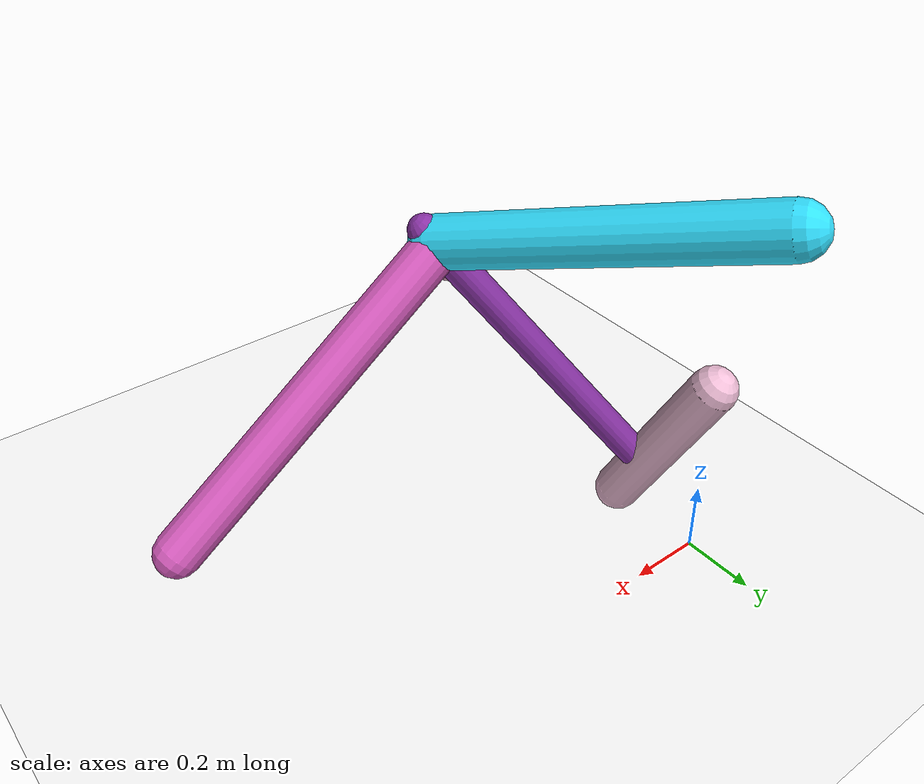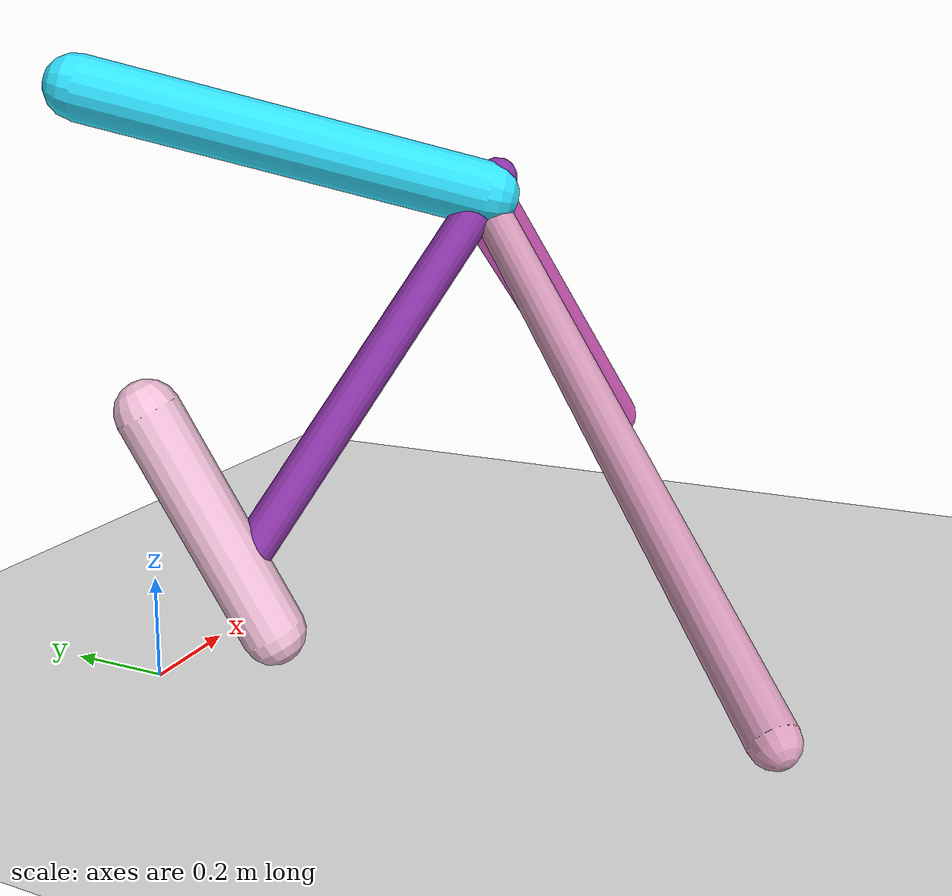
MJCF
<mujoco model="morphology">
  <option timestep="0.01"/>
  <default>
    <default class="/"/>
    <default class="0/"/>
    <default class="0/1/"/>
    <default class="0/1/2/"/>
    <default class="0/1/2/3/"/>
    <default class="0/1/2/3/4/"/>
  </default>
  <asset>
    <texture name="texplane" type="2d" builtin="checker" rgb1="0.10000000000000001 0.20000000000000001 0.29999999999999999" rgb2="0.20000000000000001 0.29999999999999999 0.40000000000000002" width="300" height="300"/>
    <material name="MatPlane" class="/" texture="texplane" texrepeat="20 20" specular="1" shininess="1" reflectance="0.5"/>
  </asset>
  <worldbody>
    <light name="//unnamed_light_0" class="/" directional="true" pos="0 0 1.5" dir="0 0 -1.3" cutoff="100" exponent="1" diffuse="1 1 1" specular="0.10000000000000001 0.10000000000000001 0.10000000000000001"/>
    <geom name="ground" class="/" type="plane" size="15 15 0.5" material="MatPlane" rgba="1 1 1 1"/>
    <site name="body" class="/" size="9.9999999999999995e-07 9.9999999999999995e-07 9.9999999999999995e-07" pos="0 0 0.53333807587623594"/>
    <body pos="0 0 0.53333807587623594" name="0/">
      <freejoint name="0/"/>
      <geom name="0/geom" class="0/" type="capsule" contype="1" conaffinity="1" condim="3" size="0.06340897440408623" rgba="0.93846790890076759 0.7429702923360596 0.84305062747102677 1" friction="0.59999999999999998 0.10000000000000001 0.10000000000000001" fromto="0 0 0 0.078108543246076856 -0.21683349515738159 -0.43333808380673461"/>
      <site name="0/end0" class="0/" size="0.0050000000000000001" pos="0.078108543246076856 -0.21683349515738159 -0.43333808380673461"/>
      <site name="0/attach1" class="0/" size="9.9999999999999995e-07 9.9999999999999995e-07 9.9999999999999995e-07" pos="0.056081414592003671 -0.15568500747791264 -0.31113386227044426"/>
      <body pos="0.056081414592003671 -0.15568500747791264 -0.31113386227044426" name="0/1/">
        <joint name="0/1/joint/" class="0/" type="hinge" axis="0 1 0" limited="true" range="-62.147443829586059 62.147443829586059"/>
        <geom name="0/1/geom" class="0/1/" type="capsule" contype="1" conaffinity="1" condim="3" size="0.041399952614250342" rgba="0.53504154396141801 0.19776533506753546 0.64566665441282378 1" friction="0.59999999999999998 0.10000000000000001 0.10000000000000001" fromto="0 0 0 0.47952923744660758 -0.3324701734921458 0.73629733443824374"/>
        <site name="0/1/end1" class="0/1/" size="0.0050000000000000001" pos="0.47952923744660758 -0.3324701734921458 0.73629733443824374"/>
        <site name="0/1/attach2" class="0/1/" size="9.9999999999999995e-07 9.9999999999999995e-07 9.9999999999999995e-07" pos="0.45815569713944304 -0.31765133847824201 0.70347914625128083"/>
        <body pos="0.45815569713944304 -0.31765133847824201 0.70347914625128083" name="0/1/2/">
          <joint name="0/1/2/joint/" class="0/1/" type="hinge" axis="-5.5511151231257827e-17 0.91139437244539268 0.41153407863124603" limited="true" range="-50.207800430868502 50.207800430868502"/>
          <geom name="0/1/2/geom" class="0/1/2/" type="capsule" contype="1" conaffinity="1" condim="3" size="0.068113222291277378" rgba="0.19223813513259069 0.87313838846854219 0.99821633514637342 1" friction="0.59999999999999998 0.10000000000000001 0.10000000000000001" fromto="0 0 0 -0.37973176235402389 0.71708548698597285 0.21201059648758425"/>
          <site name="0/1/2/end2" class="0/1/2/" size="0.0050000000000000001" pos="-0.37973176235402389 0.71708548698597285 0.21201059648758425"/>
          <site name="0/1/2/attach3" class="0/1/2/" size="9.9999999999999995e-07 9.9999999999999995e-07 9.9999999999999995e-07" pos="-0.0068049691426298378 0.01285050421201756 0.0037993281311651346"/>
          <body pos="-0.0068049691426298378 0.01285050421201756 0.0037993281311651346" name="0/1/2/3/">
            <joint name="0/1/2/3/joint/" class="0/1/2/" type="hinge" axis="2.7755575615628914e-17 -0.28352377674975632 0.95896520688581499" limited="true" range="-51.649826477663026 51.649826477663026"/>
            <geom name="0/1/2/3/geom" class="0/1/2/3/" type="capsule" contype="1" conaffinity="1" condim="3" size="0.060678049539633766" rgba="0.85642225111792336 0.36609107472939018 0.75670179767151824 1" friction="0.59999999999999998 0.10000000000000001 0.10000000000000001" fromto="0 0 0 0.73241222973348963 -0.075020500830744741 -0.6259884269798266"/>
            <site name="0/1/2/3/end3" class="0/1/2/3/" size="0.0050000000000000001" pos="0.73241222973348963 -0.075020500830744741 -0.6259884269798266"/>
            <site name="0/1/2/3/attach4" class="0/1/2/3/" size="9.9999999999999995e-07 9.9999999999999995e-07 9.9999999999999995e-07" pos="0.041231514720510225 -0.0042233168136316607 -0.035240333235942382"/>
            <body pos="0.041231514720510225 -0.0042233168136316607 -0.035240333235942382" name="0/1/2/3/4/">
              <joint name="0/1/2/3/4/joint/" class="0/1/2/3/" type="hinge" axis="0.65239207468934057 0.090181710417546856 0.7524970697542307" limited="true" range="-64.290512374267678 64.290512374267678"/>
              <geom name="0/1/2/3/4/geom" class="0/1/2/3/4/" type="capsule" contype="1" conaffinity="1" condim="3" size="0.040152678327575089" rgba="0.84451574055605749 0.60875872206920745 0.73512071718630456 1" friction="0.59999999999999998 0.10000000000000001 0.10000000000000001" fromto="0 0 0 -0.73825674451578382 -0.74083425492700639 -0.65889998677885431"/>
              <site name="0/1/2/3/4/end4" class="0/1/2/3/4/" size="0.0050000000000000001" pos="-0.73825674451578382 -0.74083425492700639 -0.65889998677885431"/>
            </body>
          </body>
        </body>
      </body>
      <camera name="0/iso" class="0/" mode="trackcom" pos="-2.2999999999999998 -2.2999999999999998 1" xyaxes="0.45000000000000001 -0.45000000000000001 0 0.29999999999999999 0.14999999999999999 0.93999999999999995"/>
    </body>
  </worldbody>
  <actuator>
    <motor name="0/1/motor" class="0/1/" ctrllimited="true" ctrlrange="-1 1" gear="59" joint="0/1/joint/"/>
    <motor name="0/1/2/motor" class="0/1/2/" ctrllimited="true" ctrlrange="-1 1" gear="75" joint="0/1/2/joint/"/>
    <motor name="0/1/2/3/motor" class="0/1/2/3/" ctrllimited="true" ctrlrange="-1 1" gear="72" joint="0/1/2/3/joint/"/>
    <motor name="0/1/2/3/4/motor" class="0/1/2/3/4/" ctrllimited="true" ctrlrange="-1 1" gear="84" joint="0/1/2/3/4/joint/"/>
  </actuator>
  <sensor>
    <subtreelinvel name="velocity" body="0/"/>
  </sensor>
</mujoco>
